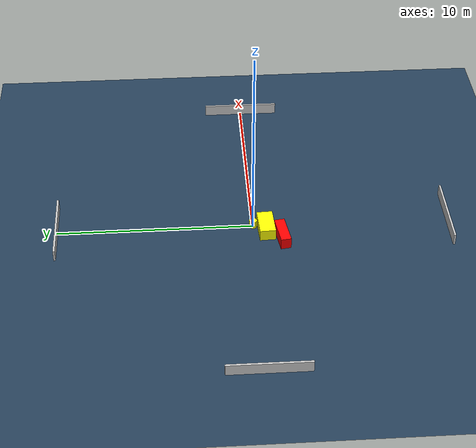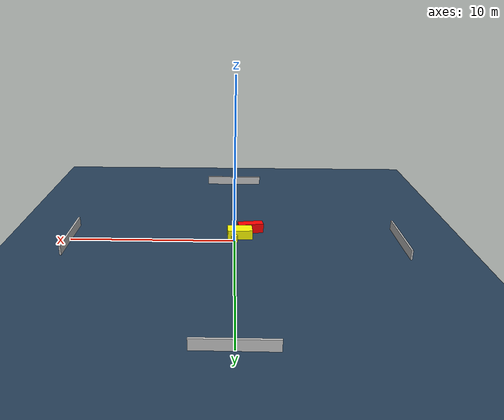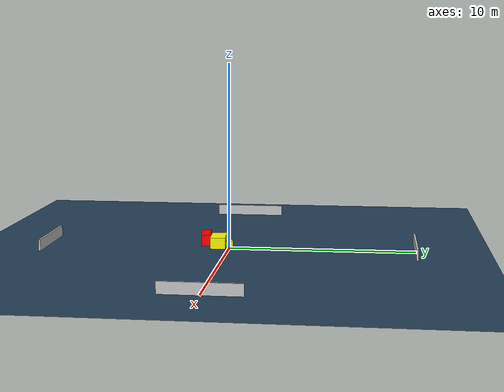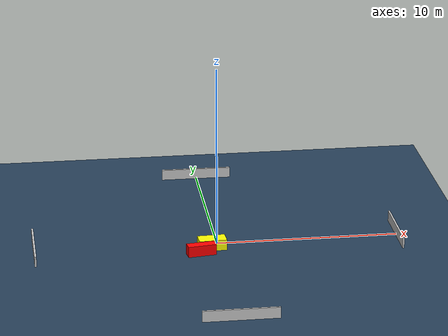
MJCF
<?xml version="1.0" ?>
<mujoco model="generated_environment">
  <option timestep="0.01" integrator="RK4" cone="elliptic"/>
  <default>
    <geom density="1"/>
  </default>
  <asset>
    <texture builtin="gradient" height="3072" name="skybox" rgb1="0.3 0.5 0.7" rgb2="0 0 0" type="skybox" width="512"/>
    <texture builtin="checker" height="300" name="groundplane" rgb1="0.2 0.3 0.4" rgb2="0.1 0.2 0.3" type="2d" width="300"/>
    <material name="groundplane" reflectance="0.2" texrepeat="5 5" texture="groundplane"/>
  </asset>
  <worldbody>
    <light dir="0 0 -1" directional="true" pos="0 0 1.5"/>
    <geom condim="3" friction="0.5 0.005 0.001" material="groundplane" name="floor" pos="0 0 0" size="0 0 0.05" type="plane"/>
    <body name="walls">
      <geom name="wall_1" condim="4" pos="-10.0 0.0 0.3" rgba="0.800000011920929 0.800000011920929 0.800000011920929 1.0" size="0.05 2.0 0.3" type="box"/>
      <geom name="wall_2" condim="4" pos="10.0 0.0 0.3" rgba="0.800000011920929 0.800000011920929 0.800000011920929 1.0" size="0.05 2.0 0.3" type="box"/>
      <geom name="wall_3" condim="4" pos="0.0 -10.0 0.3" rgba="0.800000011920929 0.800000011920929 0.800000011920929 1.0" size="2.0 0.05 0.3" type="box"/>
      <geom name="wall_4" condim="4" pos="0.0 10.0 0.3" rgba="0.800000011920929 0.800000011920929 0.800000011920929 1.0" size="2.0 0.05 0.3" type="box"/>
    </body>
    <body name="robot">
      <joint name="joint_x" type="slide" pos="0 0 0" axis="1 0 0"/>
      <joint name="joint_y" type="slide" pos="0 0 0" axis="0 1 0"/>
      <geom name="robot" type="cylinder" pos="0.0 0.0 0.2" size="0.2 0.2 0.0" mass="5.0" friction="1.0 0.005 0.0001" condim="4" rgba="1.0 1.0 0.0 1.0"/>
    </body>
    <body name="obstacle_1_movable">
      <geom name="obstacle_1_movable" condim="4" pos="-0.3445118110611722 -0.640800391760829 0.3" euler="0 0 272.84920939947415" friction="0.0 0.005 0.001" rgba="1.0 1.0 0.0 1.0" size="0.4048208780547782 0.7560093628316291 0.3" type="box" mass="0.1"/>
      <joint type="free"/>
    </body>
    <body name="obstacle_2_static">
      <geom name="obstacle_2_static" condim="4" pos="-1.018196777897344 -1.4217974629185652 0.3" euler="0 0 98.27918290266246" friction="0.0 0.005 0.001" rgba="1.0 0.0 0.0 1.0" size="0.2633449367051106 0.7822190787414542 0.3" type="box"/>
    </body>
  </worldbody>
  <actuator>
    <motor name="actuator_x" joint="joint_x" gear="1" ctrlrange="-1 1"/>
    <motor name="actuator_y" joint="joint_y" gear="1" ctrlrange="-1 1"/>
  </actuator>
</mujoco>
